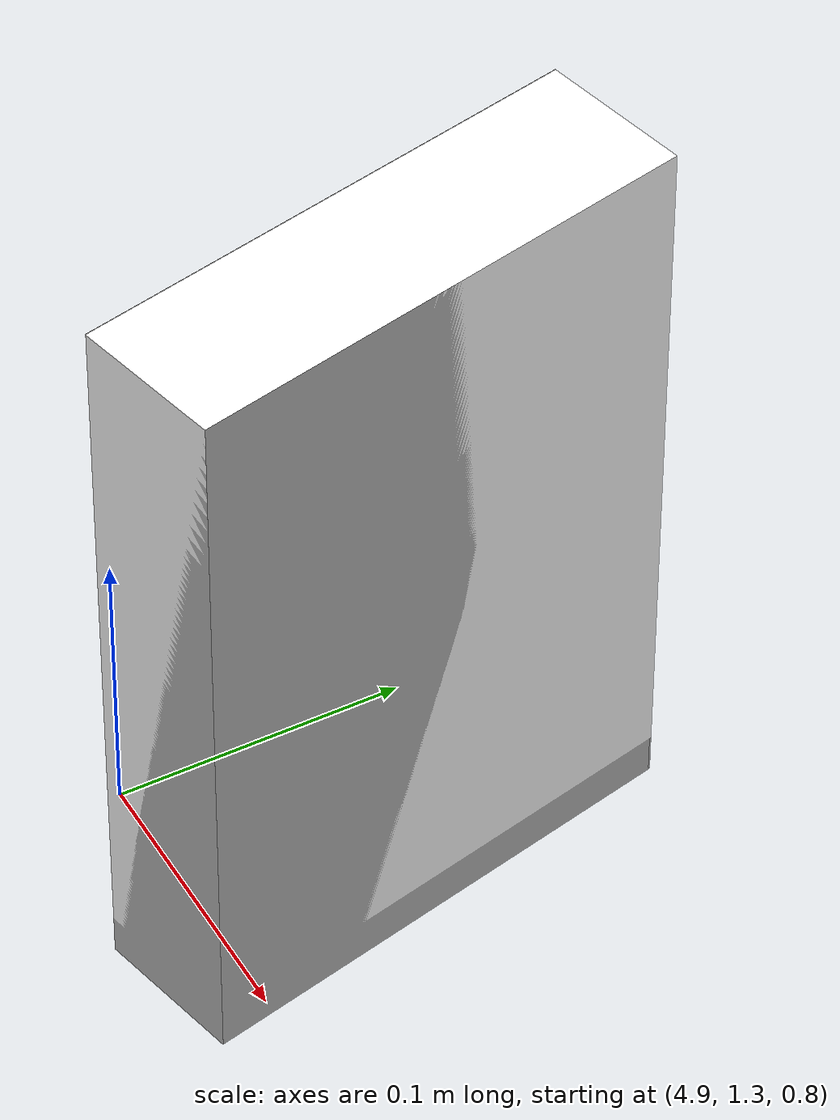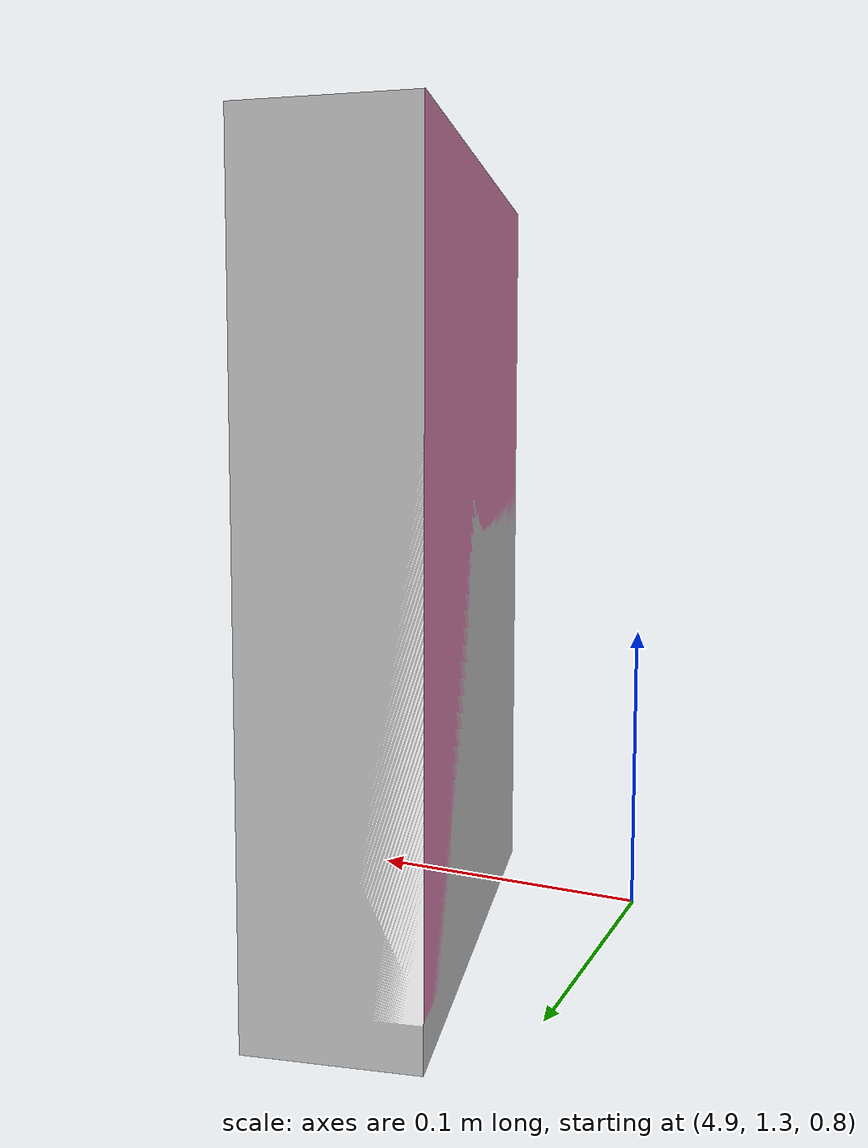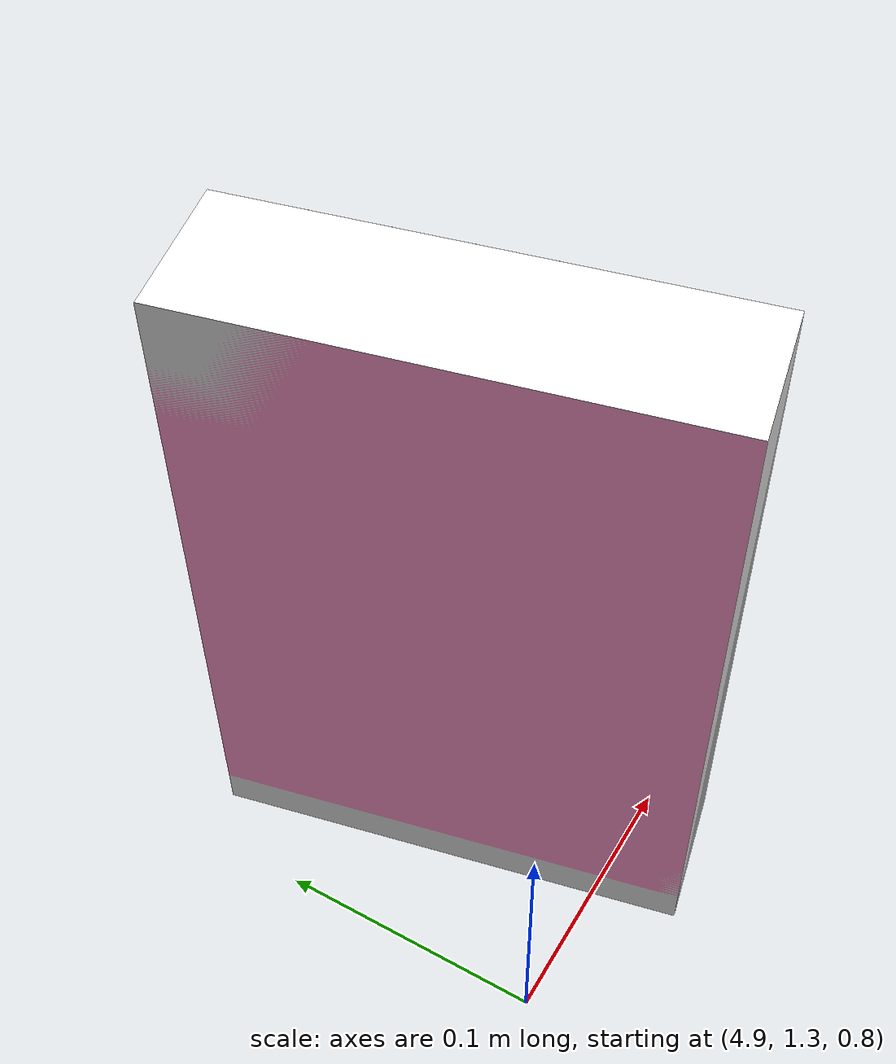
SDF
<?xml version="1.0" ?>
<sdf version="1.4">
  <model name="cereal_box">
  <pose>4.63 1.04 0.8 0 0 0.22</pose>
    <link name="link">
     <inertial>
	<mass>0.39</mass>
	<pose>0.40 0.25 0.02 0 0 0</pose>
        <inertia>
          <ixx>0.00055575</ixx>
          <ixy>0</ixy>
          <ixz>0</ixz>
          <iyy>0.00055575</iyy>
          <iyz>0</iyz>
          <izz>0.0001755</izz>
	</inertia>
     </inertial>
     <collision name="collision">
        <geometry>
          <mesh>
            <uri>model://cereal_box/meshes/cereal_box.dae</uri>
<scale>0.06 0.06 0.06</scale>
          </mesh>
        </geometry>
        <surface>
          <friction>
            <ode>
              <mu>1.0</mu>
              <mu2>1.0</mu2>
            </ode>
          </friction>
          <contact>
            <ode>
              <kp>10000000.0</kp>
              <kd>1.0</kd>
              <min_depth>0.001</min_depth>
              <max_vel>0.1</max_vel>
            </ode>
          </contact>
        </surface>
      </collision>
      <visual name="visual">
        <geometry>
          <mesh>
            <uri>model://cereal_box/meshes/cereal_box.dae</uri>
<scale>0.06 0.06 0.06</scale>
          </mesh>
        </geometry>
      </visual>
    </link>
    <static>false</static>
  </model>
</sdf>
